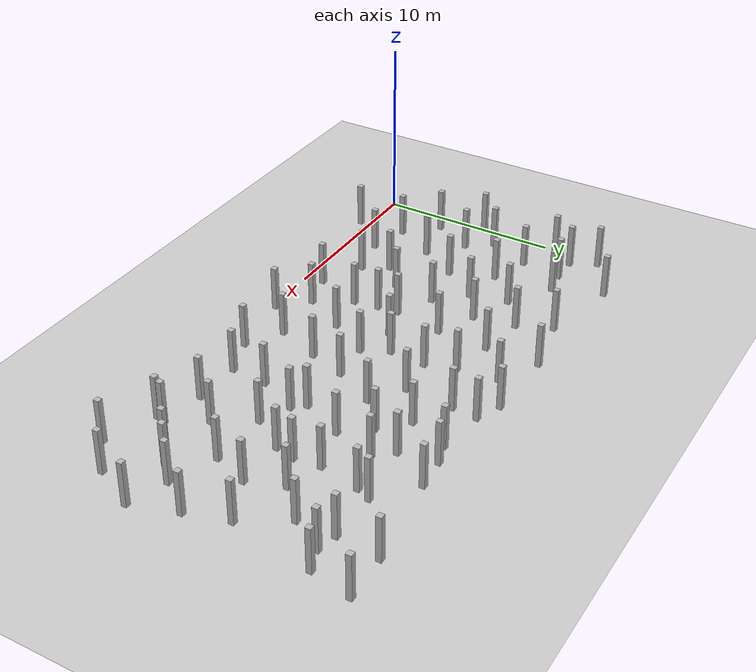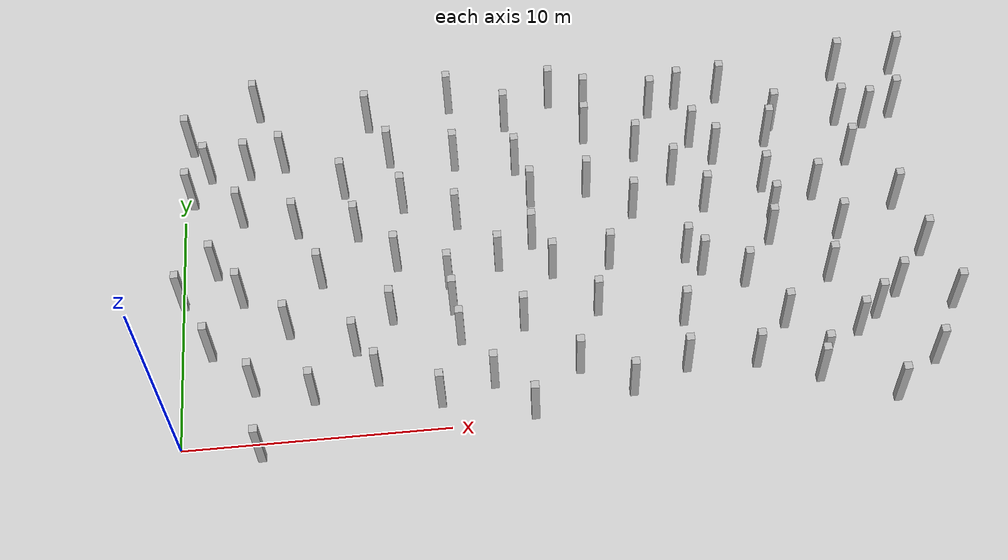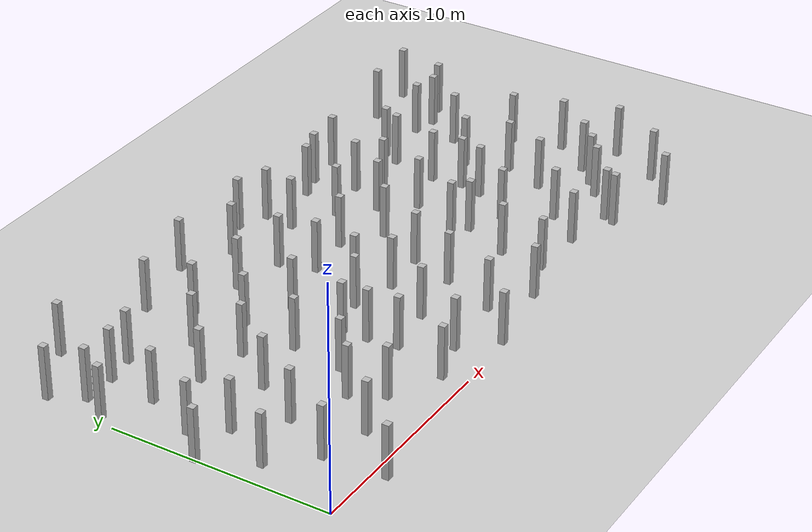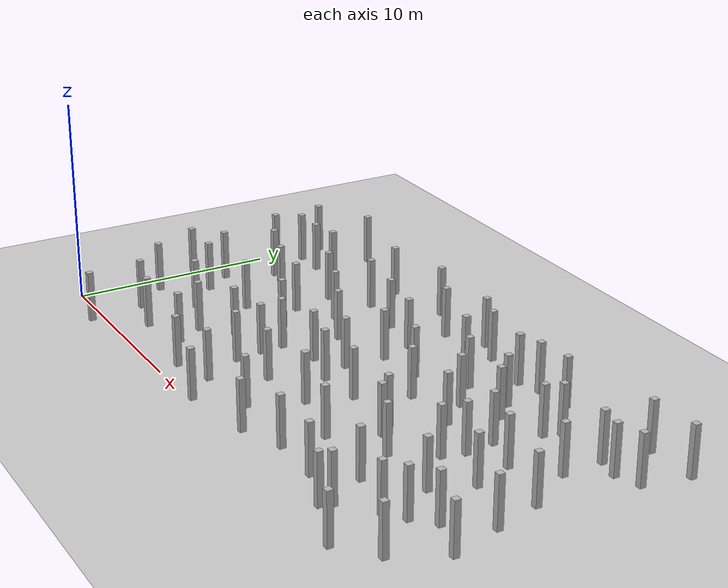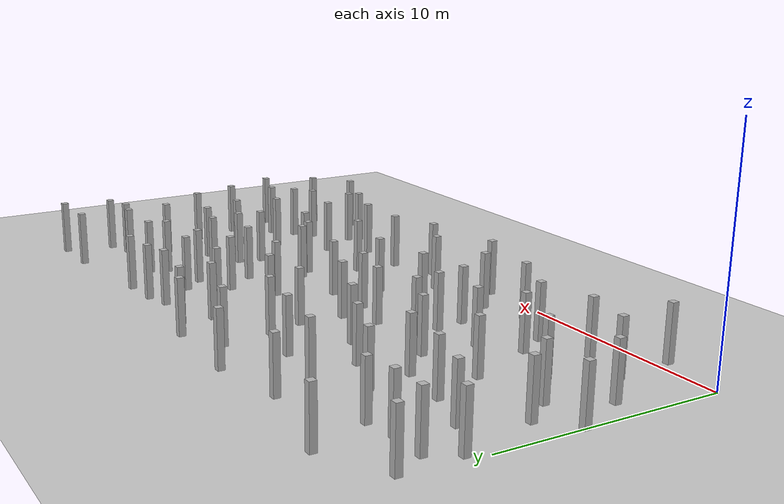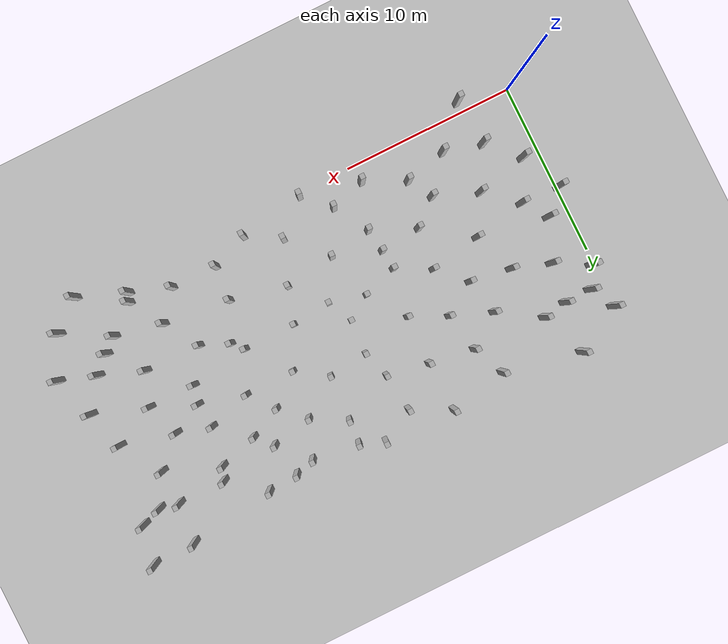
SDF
<sdf version="1.6">
 <world name="random_boxes_30x15_doubled">
  <include><uri>model://sun</uri></include>
  <include><uri>model://ground_plane</uri></include>
  <model name="box_0">
   <static>true</static>
   <pose>20.616 8.737 1.250 0 0 0</pose>
   <link name="link">
    <visual name="visual"><geometry><box><size>0.3 0.3 2.5</size></box></geometry></visual>
    <collision name="collision"><geometry><box><size>0.3 0.3 2.5</size></box></geometry></collision>
   </link>
  </model>
  <model name="box_1">
   <static>true</static>
   <pose>23.067 9.463 1.250 0 0 0</pose>
   <link name="link">
    <visual name="visual"><geometry><box><size>0.3 0.3 2.5</size></box></geometry></visual>
    <collision name="collision"><geometry><box><size>0.3 0.3 2.5</size></box></geometry></collision>
   </link>
  </model>
  <model name="box_2">
   <static>true</static>
   <pose>19.566 6.437 1.250 0 0 0</pose>
   <link name="link">
    <visual name="visual"><geometry><box><size>0.3 0.3 2.5</size></box></geometry></visual>
    <collision name="collision"><geometry><box><size>0.3 0.3 2.5</size></box></geometry></collision>
   </link>
  </model>
  <model name="box_3">
   <static>true</static>
   <pose>21.735 5.121 1.250 0 0 0</pose>
   <link name="link">
    <visual name="visual"><geometry><box><size>0.3 0.3 2.5</size></box></geometry></visual>
    <collision name="collision"><geometry><box><size>0.3 0.3 2.5</size></box></geometry></collision>
   </link>
  </model>
  <model name="box_4">
   <static>true</static>
   <pose>22.974 6.956 1.250 0 0 0</pose>
   <link name="link">
    <visual name="visual"><geometry><box><size>0.3 0.3 2.5</size></box></geometry></visual>
    <collision name="collision"><geometry><box><size>0.3 0.3 2.5</size></box></geometry></collision>
   </link>
  </model>
  <model name="box_5">
   <static>true</static>
   <pose>25.010 8.894 1.250 0 0 0</pose>
   <link name="link">
    <visual name="visual"><geometry><box><size>0.3 0.3 2.5</size></box></geometry></visual>
    <collision name="collision"><geometry><box><size>0.3 0.3 2.5</size></box></geometry></collision>
   </link>
  </model>
  <model name="box_6">
   <static>true</static>
   <pose>17.730 8.715 1.250 0 0 0</pose>
   <link name="link">
    <visual name="visual"><geometry><box><size>0.3 0.3 2.5</size></box></geometry></visual>
    <collision name="collision"><geometry><box><size>0.3 0.3 2.5</size></box></geometry></collision>
   </link>
  </model>
  <model name="box_7">
   <static>true</static>
   <pose>23.516 11.668 1.250 0 0 0</pose>
   <link name="link">
    <visual name="visual"><geometry><box><size>0.3 0.3 2.5</size></box></geometry></visual>
    <collision name="collision"><geometry><box><size>0.3 0.3 2.5</size></box></geometry></collision>
   </link>
  </model>
  <model name="box_8">
   <static>true</static>
   <pose>26.659 10.443 1.250 0 0 0</pose>
   <link name="link">
    <visual name="visual"><geometry><box><size>0.3 0.3 2.5</size></box></geometry></visual>
    <collision name="collision"><geometry><box><size>0.3 0.3 2.5</size></box></geometry></collision>
   </link>
  </model>
  <model name="box_9">
   <static>true</static>
   <pose>18.113 11.450 1.250 0 0 0</pose>
   <link name="link">
    <visual name="visual"><geometry><box><size>0.3 0.3 2.5</size></box></geometry></visual>
    <collision name="collision"><geometry><box><size>0.3 0.3 2.5</size></box></geometry></collision>
   </link>
  </model>
  <model name="box_10">
   <static>true</static>
   <pose>19.135 3.637 1.250 0 0 0</pose>
   <link name="link">
    <visual name="visual"><geometry><box><size>0.3 0.3 2.5</size></box></geometry></visual>
    <collision name="collision"><geometry><box><size>0.3 0.3 2.5</size></box></geometry></collision>
   </link>
  </model>
  <model name="box_11">
   <static>true</static>
   <pose>25.702 6.966 1.250 0 0 0</pose>
   <link name="link">
    <visual name="visual"><geometry><box><size>0.3 0.3 2.5</size></box></geometry></visual>
    <collision name="collision"><geometry><box><size>0.3 0.3 2.5</size></box></geometry></collision>
   </link>
  </model>
  <model name="box_12">
   <static>true</static>
   <pose>21.830 14.069 1.250 0 0 0</pose>
   <link name="link">
    <visual name="visual"><geometry><box><size>0.3 0.3 2.5</size></box></geometry></visual>
    <collision name="collision"><geometry><box><size>0.3 0.3 2.5</size></box></geometry></collision>
   </link>
  </model>
  <model name="box_13">
   <static>true</static>
   <pose>16.552 6.433 1.250 0 0 0</pose>
   <link name="link">
    <visual name="visual"><geometry><box><size>0.3 0.3 2.5</size></box></geometry></visual>
    <collision name="collision"><geometry><box><size>0.3 0.3 2.5</size></box></geometry></collision>
   </link>
  </model>
  <model name="box_14">
   <static>true</static>
   <pose>15.897 4.396 1.250 0 0 0</pose>
   <link name="link">
    <visual name="visual"><geometry><box><size>0.3 0.3 2.5</size></box></geometry></visual>
    <collision name="collision"><geometry><box><size>0.3 0.3 2.5</size></box></geometry></collision>
   </link>
  </model>
  <model name="box_15">
   <static>true</static>
   <pose>16.157 12.532 1.250 0 0 0</pose>
   <link name="link">
    <visual name="visual"><geometry><box><size>0.3 0.3 2.5</size></box></geometry></visual>
    <collision name="collision"><geometry><box><size>0.3 0.3 2.5</size></box></geometry></collision>
   </link>
  </model>
  <model name="box_16">
   <static>true</static>
   <pose>28.119 8.132 1.250 0 0 0</pose>
   <link name="link">
    <visual name="visual"><geometry><box><size>0.3 0.3 2.5</size></box></geometry></visual>
    <collision name="collision"><geometry><box><size>0.3 0.3 2.5</size></box></geometry></collision>
   </link>
  </model>
  <model name="box_17">
   <static>true</static>
   <pose>22.969 3.160 1.250 0 0 0</pose>
   <link name="link">
    <visual name="visual"><geometry><box><size>0.3 0.3 2.5</size></box></geometry></visual>
    <collision name="collision"><geometry><box><size>0.3 0.3 2.5</size></box></geometry></collision>
   </link>
  </model>
  <model name="box_18">
   <static>true</static>
   <pose>20.443 11.930 1.250 0 0 0</pose>
   <link name="link">
    <visual name="visual"><geometry><box><size>0.3 0.3 2.5</size></box></geometry></visual>
    <collision name="collision"><geometry><box><size>0.3 0.3 2.5</size></box></geometry></collision>
   </link>
  </model>
  <model name="box_19">
   <static>true</static>
   <pose>26.589 12.455 1.250 0 0 0</pose>
   <link name="link">
    <visual name="visual"><geometry><box><size>0.3 0.3 2.5</size></box></geometry></visual>
    <collision name="collision"><geometry><box><size>0.3 0.3 2.5</size></box></geometry></collision>
   </link>
  </model>
  <model name="box_20">
   <static>true</static>
   <pose>26.821 14.765 1.250 0 0 0</pose>
   <link name="link">
    <visual name="visual"><geometry><box><size>0.3 0.3 2.5</size></box></geometry></visual>
    <collision name="collision"><geometry><box><size>0.3 0.3 2.5</size></box></geometry></collision>
   </link>
  </model>
  <model name="box_21">
   <static>true</static>
   <pose>13.012 3.993 1.250 0 0 0</pose>
   <link name="link">
    <visual name="visual"><geometry><box><size>0.3 0.3 2.5</size></box></geometry></visual>
    <collision name="collision"><geometry><box><size>0.3 0.3 2.5</size></box></geometry></collision>
   </link>
  </model>
  <model name="box_22">
   <static>true</static>
   <pose>15.997 9.900 1.250 0 0 0</pose>
   <link name="link">
    <visual name="visual"><geometry><box><size>0.3 0.3 2.5</size></box></geometry></visual>
    <collision name="collision"><geometry><box><size>0.3 0.3 2.5</size></box></geometry></collision>
   </link>
  </model>
  <model name="box_23">
   <static>true</static>
   <pose>10.570 3.613 1.250 0 0 0</pose>
   <link name="link">
    <visual name="visual"><geometry><box><size>0.3 0.3 2.5</size></box></geometry></visual>
    <collision name="collision"><geometry><box><size>0.3 0.3 2.5</size></box></geometry></collision>
   </link>
  </model>
  <model name="box_24">
   <static>true</static>
   <pose>14.891 14.481 1.250 0 0 0</pose>
   <link name="link">
    <visual name="visual"><geometry><box><size>0.3 0.3 2.5</size></box></geometry></visual>
    <collision name="collision"><geometry><box><size>0.3 0.3 2.5</size></box></geometry></collision>
   </link>
  </model>
  <model name="box_25">
   <static>true</static>
   <pose>14.311 6.225 1.250 0 0 0</pose>
   <link name="link">
    <visual name="visual"><geometry><box><size>0.3 0.3 2.5</size></box></geometry></visual>
    <collision name="collision"><geometry><box><size>0.3 0.3 2.5</size></box></geometry></collision>
   </link>
  </model>
  <model name="box_26">
   <static>true</static>
   <pose>29.321 14.858 1.250 0 0 0</pose>
   <link name="link">
    <visual name="visual"><geometry><box><size>0.3 0.3 2.5</size></box></geometry></visual>
    <collision name="collision"><geometry><box><size>0.3 0.3 2.5</size></box></geometry></collision>
   </link>
  </model>
  <model name="box_27">
   <static>true</static>
   <pose>9.686 1.023 1.250 0 0 0</pose>
   <link name="link">
    <visual name="visual"><geometry><box><size>0.3 0.3 2.5</size></box></geometry></visual>
    <collision name="collision"><geometry><box><size>0.3 0.3 2.5</size></box></geometry></collision>
   </link>
  </model>
  <model name="box_28">
   <static>true</static>
   <pose>7.356 2.145 1.250 0 0 0</pose>
   <link name="link">
    <visual name="visual"><geometry><box><size>0.3 0.3 2.5</size></box></geometry></visual>
    <collision name="collision"><geometry><box><size>0.3 0.3 2.5</size></box></geometry></collision>
   </link>
  </model>
  <model name="box_29">
   <static>true</static>
   <pose>13.737 9.640 1.250 0 0 0</pose>
   <link name="link">
    <visual name="visual"><geometry><box><size>0.3 0.3 2.5</size></box></geometry></visual>
    <collision name="collision"><geometry><box><size>0.3 0.3 2.5</size></box></geometry></collision>
   </link>
  </model>
  <model name="box_30">
   <static>true</static>
   <pose>4.947 1.573 1.250 0 0 0</pose>
   <link name="link">
    <visual name="visual"><geometry><box><size>0.3 0.3 2.5</size></box></geometry></visual>
    <collision name="collision"><geometry><box><size>0.3 0.3 2.5</size></box></geometry></collision>
   </link>
  </model>
  <model name="box_31">
   <static>true</static>
   <pose>24.149 1.246 1.250 0 0 0</pose>
   <link name="link">
    <visual name="visual"><geometry><box><size>0.3 0.3 2.5</size></box></geometry></visual>
    <collision name="collision"><geometry><box><size>0.3 0.3 2.5</size></box></geometry></collision>
   </link>
  </model>
  <model name="box_36">
   <static>true</static>
   <pose>18.938 13.570 1.250 0 0 0</pose>
   <link name="link">
    <visual name="visual"><geometry><box><size>0.3 0.3 2.5</size></box></geometry></visual>
    <collision name="collision"><geometry><box><size>0.3 0.3 2.5</size></box></geometry></collision>
   </link>
  </model>
  <model name="box_37">
   <static>true</static>
   <pose>12.987 13.457 1.250 0 0 0</pose>
   <link name="link">
    <visual name="visual"><geometry><box><size>0.3 0.3 2.5</size></box></geometry></visual>
    <collision name="collision"><geometry><box><size>0.3 0.3 2.5</size></box></geometry></collision>
   </link>
  </model>
  <model name="box_39">
   <static>true</static>
   <pose>24.993 5.047 1.250 0 0 0</pose>
   <link name="link">
    <visual name="visual"><geometry><box><size>0.3 0.3 2.5</size></box></geometry></visual>
    <collision name="collision"><geometry><box><size>0.3 0.3 2.5</size></box></geometry></collision>
   </link>
  </model>
  <model name="box_43">
   <static>true</static>
   <pose>10.833 11.682 1.250 0 0 0</pose>
   <link name="link">
    <visual name="visual"><geometry><box><size>0.3 0.3 2.5</size></box></geometry></visual>
    <collision name="collision"><geometry><box><size>0.3 0.3 2.5</size></box></geometry></collision>
   </link>
  </model>
  <model name="box_44">
   <static>true</static>
   <pose>8.018 4.738 1.250 0 0 0</pose>
   <link name="link">
    <visual name="visual"><geometry><box><size>0.3 0.3 2.5</size></box></geometry></visual>
    <collision name="collision"><geometry><box><size>0.3 0.3 2.5</size></box></geometry></collision>
   </link>
  </model>
  <model name="box_45">
   <static>true</static>
   <pose>14.959 1.951 1.250 0 0 0</pose>
   <link name="link">
    <visual name="visual"><geometry><box><size>0.3 0.3 2.5</size></box></geometry></visual>
    <collision name="collision"><geometry><box><size>0.3 0.3 2.5</size></box></geometry></collision>
   </link>
  </model>
  <model name="box_46">
   <static>true</static>
   <pose>10.274 6.115 1.250 0 0 0</pose>
   <link name="link">
    <visual name="visual"><geometry><box><size>0.3 0.3 2.5</size></box></geometry></visual>
    <collision name="collision"><geometry><box><size>0.3 0.3 2.5</size></box></geometry></collision>
   </link>
  </model>
  <model name="box_51">
   <static>true</static>
   <pose>2.736 2.137 1.250 0 0 0</pose>
   <link name="link">
    <visual name="visual"><geometry><box><size>0.3 0.3 2.5</size></box></geometry></visual>
    <collision name="collision"><geometry><box><size>0.3 0.3 2.5</size></box></geometry></collision>
   </link>
  </model>
  <model name="box_52">
   <static>true</static>
   <pose>10.743 8.854 1.250 0 0 0</pose>
   <link name="link">
    <visual name="visual"><geometry><box><size>0.3 0.3 2.5</size></box></geometry></visual>
    <collision name="collision"><geometry><box><size>0.3 0.3 2.5</size></box></geometry></collision>
   </link>
  </model>
  <model name="box_54">
   <static>true</static>
   <pose>8.293 7.130 1.250 0 0 0</pose>
   <link name="link">
    <visual name="visual"><geometry><box><size>0.3 0.3 2.5</size></box></geometry></visual>
    <collision name="collision"><geometry><box><size>0.3 0.3 2.5</size></box></geometry></collision>
   </link>
  </model>
  <model name="box_55">
   <static>true</static>
   <pose>5.351 6.628 1.250 0 0 0</pose>
   <link name="link">
    <visual name="visual"><geometry><box><size>0.3 0.3 2.5</size></box></geometry></visual>
    <collision name="collision"><geometry><box><size>0.3 0.3 2.5</size></box></geometry></collision>
   </link>
  </model>
  <model name="box_57">
   <static>true</static>
   <pose>26.706 -0.330 1.250 0 0 0</pose>
   <link name="link">
    <visual name="visual"><geometry><box><size>0.3 0.3 2.5</size></box></geometry></visual>
    <collision name="collision"><geometry><box><size>0.3 0.3 2.5</size></box></geometry></collision>
   </link>
  </model>
  <model name="box_58">
   <static>true</static>
   <pose>13.120 0.209 1.250 0 0 0</pose>
   <link name="link">
    <visual name="visual"><geometry><box><size>0.3 0.3 2.5</size></box></geometry></visual>
    <collision name="collision"><geometry><box><size>0.3 0.3 2.5</size></box></geometry></collision>
   </link>
  </model>
  <model name="box_59">
   <static>true</static>
   <pose>11.712 1.638 1.250 0 0 0</pose>
   <link name="link">
    <visual name="visual"><geometry><box><size>0.3 0.3 2.5</size></box></geometry></visual>
    <collision name="collision"><geometry><box><size>0.3 0.3 2.5</size></box></geometry></collision>
   </link>
  </model>
  <model name="box_60">
   <static>true</static>
   <pose>4.062 4.485 1.250 0 0 0</pose>
   <link name="link">
    <visual name="visual"><geometry><box><size>0.3 0.3 2.5</size></box></geometry></visual>
    <collision name="collision"><geometry><box><size>0.3 0.3 2.5</size></box></geometry></collision>
   </link>
  </model>
  <model name="box_61">
   <static>true</static>
   <pose>28.405 1.069 1.250 0 0 0</pose>
   <link name="link">
    <visual name="visual"><geometry><box><size>0.3 0.3 2.5</size></box></geometry></visual>
    <collision name="collision"><geometry><box><size>0.3 0.3 2.5</size></box></geometry></collision>
   </link>
  </model>
  <model name="box_67">
   <static>true</static>
   <pose>27.470 4.108 1.250 0 0 0</pose>
   <link name="link">
    <visual name="visual"><geometry><box><size>0.3 0.3 2.5</size></box></geometry></visual>
    <collision name="collision"><geometry><box><size>0.3 0.3 2.5</size></box></geometry></collision>
   </link>
  </model>
  <model name="box_71">
   <static>true</static>
   <pose>8.660 9.831 1.250 0 0 0</pose>
   <link name="link">
    <visual name="visual"><geometry><box><size>0.3 0.3 2.5</size></box></geometry></visual>
    <collision name="collision"><geometry><box><size>0.3 0.3 2.5</size></box></geometry></collision>
   </link>
  </model>
  <model name="box_74">
   <static>true</static>
   <pose>29.586 3.407 1.250 0 0 0</pose>
   <link name="link">
    <visual name="visual"><geometry><box><size>0.3 0.3 2.5</size></box></geometry></visual>
    <collision name="collision"><geometry><box><size>0.3 0.3 2.5</size></box></geometry></collision>
   </link>
  </model>
  <model name="box_78">
   <static>true</static>
   <pose>8.229 12.087 1.250 0 0 0</pose>
   <link name="link">
    <visual name="visual"><geometry><box><size>0.3 0.3 2.5</size></box></geometry></visual>
    <collision name="collision"><geometry><box><size>0.3 0.3 2.5</size></box></geometry></collision>
   </link>
  </model>
  <model name="box_83">
   <static>true</static>
   <pose>18.986 1.625 1.250 0 0 0</pose>
   <link name="link">
    <visual name="visual"><geometry><box><size>0.3 0.3 2.5</size></box></geometry></visual>
    <collision name="collision"><geometry><box><size>0.3 0.3 2.5</size></box></geometry></collision>
   </link>
  </model>
  <model name="box_88">
   <static>true</static>
   <pose>4.448 9.019 1.250 0 0 0</pose>
   <link name="link">
    <visual name="visual"><geometry><box><size>0.3 0.3 2.5</size></box></geometry></visual>
    <collision name="collision"><geometry><box><size>0.3 0.3 2.5</size></box></geometry></collision>
   </link>
  </model>
  <model name="box_89">
   <static>true</static>
   <pose>6.350 10.738 1.250 0 0 0</pose>
   <link name="link">
    <visual name="visual"><geometry><box><size>0.3 0.3 2.5</size></box></geometry></visual>
    <collision name="collision"><geometry><box><size>0.3 0.3 2.5</size></box></geometry></collision>
   </link>
  </model>
  <model name="box_90">
   <static>true</static>
   <pose>2.301 6.039 1.250 0 0 0</pose>
   <link name="link">
    <visual name="visual"><geometry><box><size>0.3 0.3 2.5</size></box></geometry></visual>
    <collision name="collision"><geometry><box><size>0.3 0.3 2.5</size></box></geometry></collision>
   </link>
  </model>
  <model name="box_91">
   <static>true</static>
   <pose>0.036 6.131 1.250 0 0 0</pose>
   <link name="link">
    <visual name="visual"><geometry><box><size>0.3 0.3 2.5</size></box></geometry></visual>
    <collision name="collision"><geometry><box><size>0.3 0.3 2.5</size></box></geometry></collision>
   </link>
  </model>
  <model name="box_99">
   <static>true</static>
   <pose>12.245 6.755 1.250 0 0 0</pose>
   <link name="link">
    <visual name="visual"><geometry><box><size>0.3 0.3 2.5</size></box></geometry></visual>
    <collision name="collision"><geometry><box><size>0.3 0.3 2.5</size></box></geometry></collision>
   </link>
  </model>
  <model name="box_102">
   <static>true</static>
   <pose>21.645 1.568 1.250 0 0 0</pose>
   <link name="link">
    <visual name="visual"><geometry><box><size>0.3 0.3 2.5</size></box></geometry></visual>
    <collision name="collision"><geometry><box><size>0.3 0.3 2.5</size></box></geometry></collision>
   </link>
  </model>
  <model name="box_106">
   <static>true</static>
   <pose>1.113 3.802 1.250 0 0 0</pose>
   <link name="link">
    <visual name="visual"><geometry><box><size>0.3 0.3 2.5</size></box></geometry></visual>
    <collision name="collision"><geometry><box><size>0.3 0.3 2.5</size></box></geometry></collision>
   </link>
  </model>
  <model name="box_114">
   <static>true</static>
   <pose>2.291 9.749 1.250 0 0 0</pose>
   <link name="link">
    <visual name="visual"><geometry><box><size>0.3 0.3 2.5</size></box></geometry></visual>
    <collision name="collision"><geometry><box><size>0.3 0.3 2.5</size></box></geometry></collision>
   </link>
  </model>
  <model name="box_120">
   <static>true</static>
   <pose>10.760 14.593 1.250 0 0 0</pose>
   <link name="link">
    <visual name="visual"><geometry><box><size>0.3 0.3 2.5</size></box></geometry></visual>
    <collision name="collision"><geometry><box><size>0.3 0.3 2.5</size></box></geometry></collision>
   </link>
  </model>
  <model name="box_121">
   <static>true</static>
   <pose>3.982 12.250 1.250 0 0 0</pose>
   <link name="link">
    <visual name="visual"><geometry><box><size>0.3 0.3 2.5</size></box></geometry></visual>
    <collision name="collision"><geometry><box><size>0.3 0.3 2.5</size></box></geometry></collision>
   </link>
  </model>
  <model name="box_122">
   <static>true</static>
   <pose>0.284 13.400 1.250 0 0 0</pose>
   <link name="link">
    <visual name="visual"><geometry><box><size>0.3 0.3 2.5</size></box></geometry></visual>
    <collision name="collision"><geometry><box><size>0.3 0.3 2.5</size></box></geometry></collision>
   </link>
  </model>
  <model name="box_126">
   <static>true</static>
   <pose>0.342 10.808 1.250 0 0 0</pose>
   <link name="link">
    <visual name="visual"><geometry><box><size>0.3 0.3 2.5</size></box></geometry></visual>
    <collision name="collision"><geometry><box><size>0.3 0.3 2.5</size></box></geometry></collision>
   </link>
  </model>
  <model name="box_136">
   <static>true</static>
   <pose>25.723 2.559 1.250 0 0 0</pose>
   <link name="link">
    <visual name="visual"><geometry><box><size>0.3 0.3 2.5</size></box></geometry></visual>
    <collision name="collision"><geometry><box><size>0.3 0.3 2.5</size></box></geometry></collision>
   </link>
  </model>
  <model name="box_137">
   <static>true</static>
   <pose>16.872 0.823 1.250 0 0 0</pose>
   <link name="link">
    <visual name="visual"><geometry><box><size>0.3 0.3 2.5</size></box></geometry></visual>
    <collision name="collision"><geometry><box><size>0.3 0.3 2.5</size></box></geometry></collision>
   </link>
  </model>
  <model name="box_138">
   <static>true</static>
   <pose>6.807 8.650 1.250 0 0 0</pose>
   <link name="link">
    <visual name="visual"><geometry><box><size>0.3 0.3 2.5</size></box></geometry></visual>
    <collision name="collision"><geometry><box><size>0.3 0.3 2.5</size></box></geometry></collision>
   </link>
  </model>
  <model name="box_139">
   <static>true</static>
   <pose>26.541 3.238 1.250 0 0 0</pose>
   <link name="link">
    <visual name="visual"><geometry><box><size>0.3 0.3 2.5</size></box></geometry></visual>
    <collision name="collision"><geometry><box><size>0.3 0.3 2.5</size></box></geometry></collision>
   </link>
  </model>
  <model name="box_141">
   <static>true</static>
   <pose>20.076 13.911 1.250 0 0 0</pose>
   <link name="link">
    <visual name="visual"><geometry><box><size>0.3 0.3 2.5</size></box></geometry></visual>
    <collision name="collision"><geometry><box><size>0.3 0.3 2.5</size></box></geometry></collision>
   </link>
  </model>
  <model name="box_146">
   <static>true</static>
   <pose>16.273 13.918 1.250 0 0 0</pose>
   <link name="link">
    <visual name="visual"><geometry><box><size>0.3 0.3 2.5</size></box></geometry></visual>
    <collision name="collision"><geometry><box><size>0.3 0.3 2.5</size></box></geometry></collision>
   </link>
  </model>
  <model name="box_147">
   <static>true</static>
   <pose>2.595 12.016 1.250 0 0 0</pose>
   <link name="link">
    <visual name="visual"><geometry><box><size>0.3 0.3 2.5</size></box></geometry></visual>
    <collision name="collision"><geometry><box><size>0.3 0.3 2.5</size></box></geometry></collision>
   </link>
  </model>
  <model name="box_148">
   <static>true</static>
   <pose>2.969 -0.573 1.250 0 0 0</pose>
   <link name="link">
    <visual name="visual"><geometry><box><size>0.3 0.3 2.5</size></box></geometry></visual>
    <collision name="collision"><geometry><box><size>0.3 0.3 2.5</size></box></geometry></collision>
   </link>
  </model>
  <model name="box_149">
   <static>true</static>
   <pose>27.702 12.215 1.250 0 0 0</pose>
   <link name="link">
    <visual name="visual"><geometry><box><size>0.3 0.3 2.5</size></box></geometry></visual>
    <collision name="collision"><geometry><box><size>0.3 0.3 2.5</size></box></geometry></collision>
   </link>
  </model>
  <model name="box_151">
   <static>true</static>
   <pose>28.875 12.636 1.250 0 0 0</pose>
   <link name="link">
    <visual name="visual"><geometry><box><size>0.3 0.3 2.5</size></box></geometry></visual>
    <collision name="collision"><geometry><box><size>0.3 0.3 2.5</size></box></geometry></collision>
   </link>
  </model>
  <model name="box_153">
   <static>true</static>
   <pose>23.839 12.435 1.250 0 0 0</pose>
   <link name="link">
    <visual name="visual"><geometry><box><size>0.3 0.3 2.5</size></box></geometry></visual>
    <collision name="collision"><geometry><box><size>0.3 0.3 2.5</size></box></geometry></collision>
   </link>
  </model>
  <model name="box_154">
   <static>true</static>
   <pose>13.626 7.644 1.250 0 0 0</pose>
   <link name="link">
    <visual name="visual"><geometry><box><size>0.3 0.3 2.5</size></box></geometry></visual>
    <collision name="collision"><geometry><box><size>0.3 0.3 2.5</size></box></geometry></collision>
   </link>
  </model>
  <model name="box_155">
   <static>true</static>
   <pose>23.945 0.742 1.250 0 0 0</pose>
   <link name="link">
    <visual name="visual"><geometry><box><size>0.3 0.3 2.5</size></box></geometry></visual>
    <collision name="collision"><geometry><box><size>0.3 0.3 2.5</size></box></geometry></collision>
   </link>
  </model>
  <model name="box_158">
   <static>true</static>
   <pose>21.282 10.999 1.250 0 0 0</pose>
   <link name="link">
    <visual name="visual"><geometry><box><size>0.3 0.3 2.5</size></box></geometry></visual>
    <collision name="collision"><geometry><box><size>0.3 0.3 2.5</size></box></geometry></collision>
   </link>
  </model>
  <model name="box_159">
   <static>true</static>
   <pose>2.973 14.885 1.250 0 0 0</pose>
   <link name="link">
    <visual name="visual"><geometry><box><size>0.3 0.3 2.5</size></box></geometry></visual>
    <collision name="collision"><geometry><box><size>0.3 0.3 2.5</size></box></geometry></collision>
   </link>
  </model>
  <model name="box_160">
   <static>true</static>
   <pose>10.380 4.966 1.250 0 0 0</pose>
   <link name="link">
    <visual name="visual"><geometry><box><size>0.3 0.3 2.5</size></box></geometry></visual>
    <collision name="collision"><geometry><box><size>0.3 0.3 2.5</size></box></geometry></collision>
   </link>
  </model>
  <model name="box_163">
   <static>true</static>
   <pose>19.467 10.158 1.250 0 0 0</pose>
   <link name="link">
    <visual name="visual"><geometry><box><size>0.3 0.3 2.5</size></box></geometry></visual>
    <collision name="collision"><geometry><box><size>0.3 0.3 2.5</size></box></geometry></collision>
   </link>
  </model>
  <model name="box_164">
   <static>true</static>
   <pose>1.026 12.000 1.250 0 0 0</pose>
   <link name="link">
    <visual name="visual"><geometry><box><size>0.3 0.3 2.5</size></box></geometry></visual>
    <collision name="collision"><geometry><box><size>0.3 0.3 2.5</size></box></geometry></collision>
   </link>
  </model>
  <model name="box_165">
   <static>true</static>
   <pose>13.250 11.237 1.250 0 0 0</pose>
   <link name="link">
    <visual name="visual"><geometry><box><size>0.3 0.3 2.5</size></box></geometry></visual>
    <collision name="collision"><geometry><box><size>0.3 0.3 2.5</size></box></geometry></collision>
   </link>
  </model>
  <model name="box_166">
   <static>true</static>
   <pose>23.238 8.019 1.250 0 0 0</pose>
   <link name="link">
    <visual name="visual"><geometry><box><size>0.3 0.3 2.5</size></box></geometry></visual>
    <collision name="collision"><geometry><box><size>0.3 0.3 2.5</size></box></geometry></collision>
   </link>
  </model>
  <model name="box_168">
   <static>true</static>
   <pose>7.430 13.931 1.250 0 0 0</pose>
   <link name="link">
    <visual name="visual"><geometry><box><size>0.3 0.3 2.5</size></box></geometry></visual>
    <collision name="collision"><geometry><box><size>0.3 0.3 2.5</size></box></geometry></collision>
   </link>
  </model>
  <model name="box_171">
   <static>true</static>
   <pose>1.300 7.379 1.250 0 0 0</pose>
   <link name="link">
    <visual name="visual"><geometry><box><size>0.3 0.3 2.5</size></box></geometry></visual>
    <collision name="collision"><geometry><box><size>0.3 0.3 2.5</size></box></geometry></collision>
   </link>
  </model>
  <model name="box_172">
   <static>true</static>
   <pose>6.581 3.511 1.250 0 0 0</pose>
   <link name="link">
    <visual name="visual"><geometry><box><size>0.3 0.3 2.5</size></box></geometry></visual>
    <collision name="collision"><geometry><box><size>0.3 0.3 2.5</size></box></geometry></collision>
   </link>
  </model>
  <model name="box_173">
   <static>true</static>
   <pose>28.799 5.869 1.250 0 0 0</pose>
   <link name="link">
    <visual name="visual"><geometry><box><size>0.3 0.3 2.5</size></box></geometry></visual>
    <collision name="collision"><geometry><box><size>0.3 0.3 2.5</size></box></geometry></collision>
   </link>
  </model>
  <model name="box_176">
   <static>true</static>
   <pose>20.126 5.816 1.250 0 0 0</pose>
   <link name="link">
    <visual name="visual"><geometry><box><size>0.3 0.3 2.5</size></box></geometry></visual>
    <collision name="collision"><geometry><box><size>0.3 0.3 2.5</size></box></geometry></collision>
   </link>
  </model>
 </world>
</sdf>
